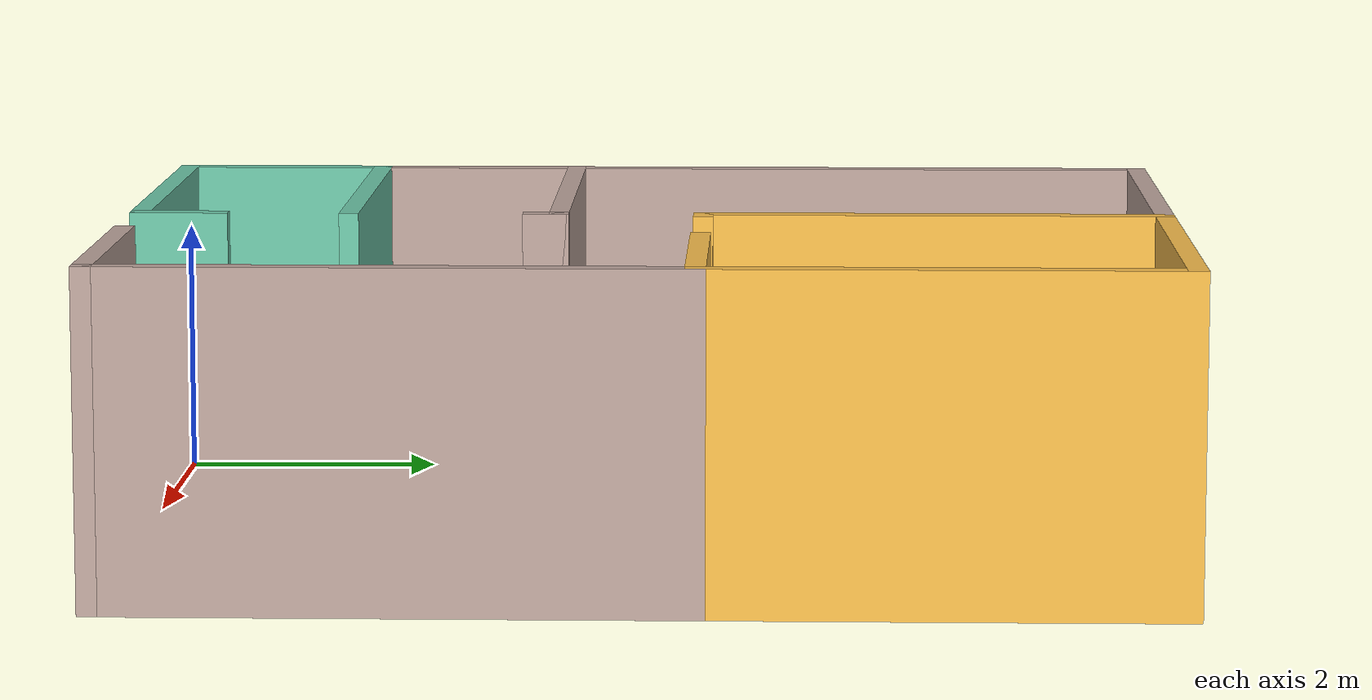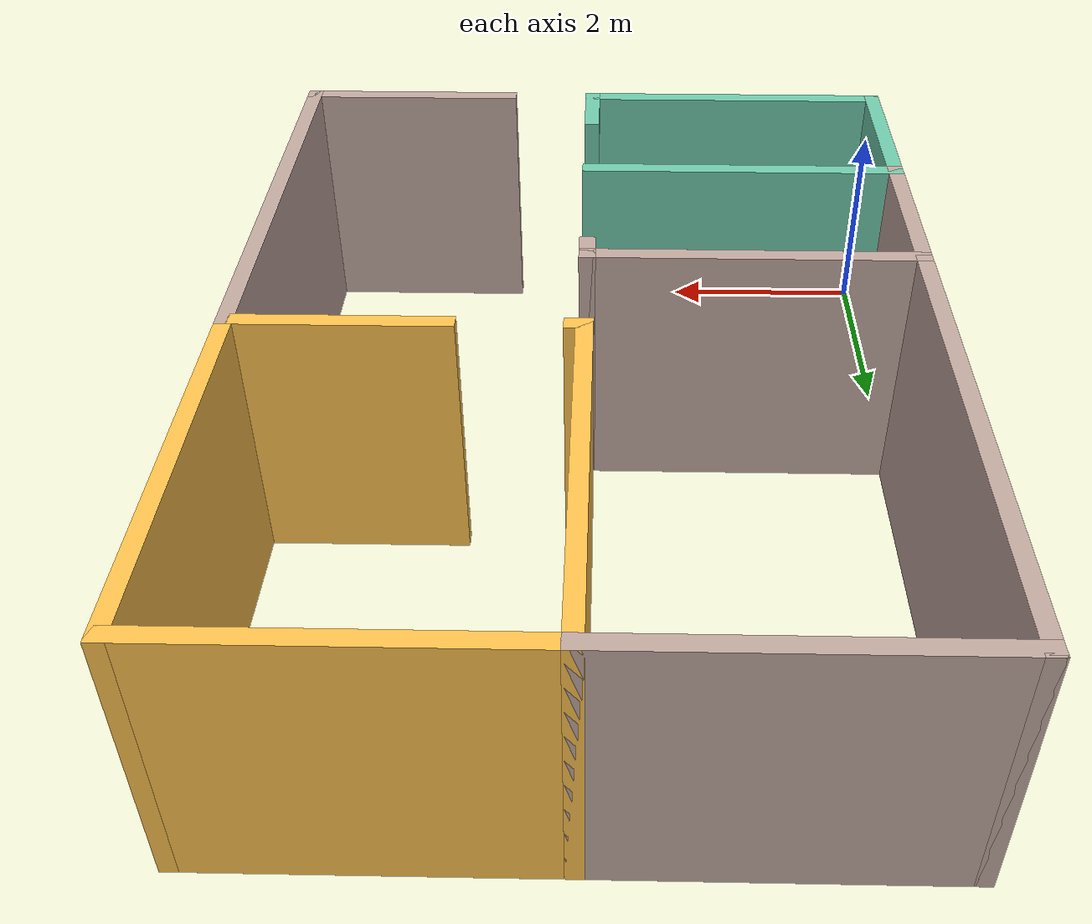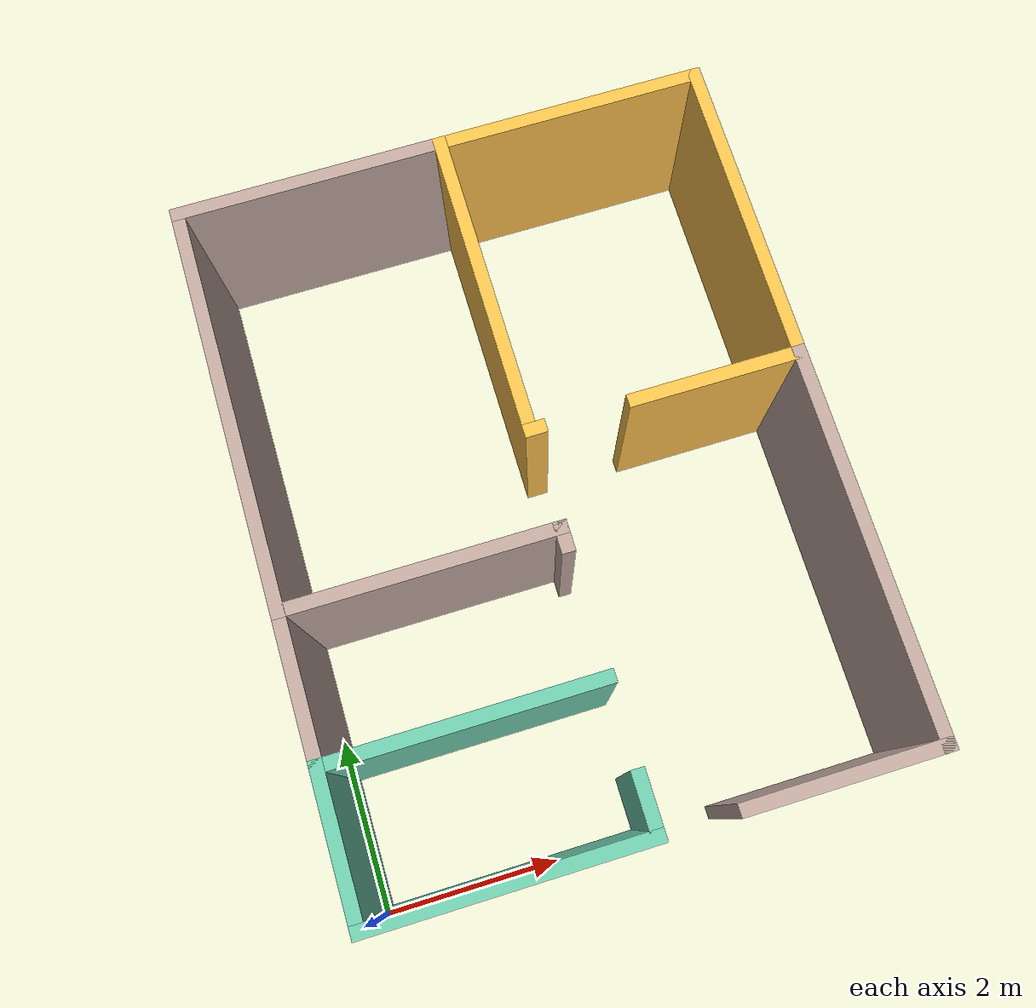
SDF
<?xml version='1.0'?>
<sdf version='1.6'>
  <model name='Building'>
    <pose frame=''>3 3.9 0 0 -0 0</pose>
    <link name='Wall_0'>
      <collision name='Wall_0_Collision'>
        <geometry>
          <box>
            <size>3.15 0.15 2.5</size>
          </box>
        </geometry>
        <pose frame=''>0 0 1.25 0 -0 0</pose>
      </collision>
      <visual name='Wall_0_Visual'>
        <pose frame=''>0 0 1.25 0 -0 0</pose>
        <geometry>
          <box>
            <size>3.15 0.15 2.5</size>
          </box>
        </geometry>
        <material>
          <script>
            <uri>file://media/materials/scripts/gazebo.material</uri>
            <name>Gazebo/Grey</name>
          </script>
          <ambient>0.435294 0.796078 0.67451 1</ambient>
        </material>
        <meta>
          <layer>0</layer>
        </meta>
      </visual>
      <pose frame=''>-1.5 -3.9 0 0 -0 0</pose>
    </link>
    <link name='Wall_11'>
      <collision name='Wall_11_Collision'>
        <geometry>
          <box>
            <size>4.75 0.15 2.5</size>
          </box>
        </geometry>
        <pose frame=''>0 0 1.25 0 -0 0</pose>
      </collision>
      <visual name='Wall_11_Visual'>
        <pose frame=''>0 0 1.25 0 -0 0</pose>
        <geometry>
          <box>
            <size>4.75 0.15 2.5</size>
          </box>
        </geometry>
        <material>
          <script>
            <uri>file://media/materials/scripts/gazebo.material</uri>
            <name>Gazebo/Grey</name>
          </script>
          <ambient>0.760784 0.662745 0.627451 1</ambient>
        </material>
        <meta>
          <layer>0</layer>
        </meta>
      </visual>
      <pose frame=''>-3 1.6 0 0 -0 1.5708</pose>
    </link>
    <link name='Wall_13'>
      <collision name='Wall_13_Collision'>
        <geometry>
          <box>
            <size>3.15 0.15 2.5</size>
          </box>
        </geometry>
        <pose frame=''>0 0 1.25 0 -0 0</pose>
      </collision>
      <visual name='Wall_13_Visual'>
        <pose frame=''>0 0 1.25 0 -0 0</pose>
        <geometry>
          <box>
            <size>3.15 0.15 2.5</size>
          </box>
        </geometry>
        <material>
          <script>
            <uri>file://media/materials/scripts/gazebo.material</uri>
            <name>Gazebo/Grey</name>
          </script>
          <ambient>0.760784 0.662745 0.627451 1</ambient>
        </material>
        <meta>
          <layer>0</layer>
        </meta>
      </visual>
      <pose frame=''>-1.5 3.9 0 0 -0 0</pose>
    </link>
    <link name='Wall_15'>
      <collision name='Wall_15_Collision'>
        <geometry>
          <box>
            <size>3.65 0.15 2.5</size>
          </box>
        </geometry>
        <pose frame=''>0 0 1.25 0 -0 0</pose>
      </collision>
      <visual name='Wall_15_Visual'>
        <pose frame=''>0 0 1.25 0 -0 0</pose>
        <geometry>
          <box>
            <size>3.65 0.15 2.5</size>
          </box>
        </geometry>
        <material>
          <script>
            <uri>file://media/materials/scripts/gazebo.material</uri>
            <name>Gazebo/Grey</name>
          </script>
          <ambient>1 0.764706 0.305882 1</ambient>
        </material>
        <meta>
          <layer>0</layer>
        </meta>
      </visual>
      <pose frame=''>0 2.15 0 0 -0 -1.5708</pose>
    </link>
    <link name='Wall_17'>
      <collision name='Wall_17_Collision'>
        <geometry>
          <box>
            <size>3.15 0.15 2.5</size>
          </box>
        </geometry>
        <pose frame=''>0 0 1.25 0 -0 0</pose>
      </collision>
      <visual name='Wall_17_Visual'>
        <pose frame=''>0 0 1.25 0 -0 0</pose>
        <geometry>
          <box>
            <size>3.15 0.15 2.5</size>
          </box>
        </geometry>
        <material>
          <script>
            <uri>file://media/materials/scripts/gazebo.material</uri>
            <name>Gazebo/Grey</name>
          </script>
          <ambient>1 0.764706 0.305882 1</ambient>
        </material>
        <meta>
          <layer>0</layer>
        </meta>
      </visual>
      <pose frame=''>1.5 3.9 0 0 -0 0</pose>
    </link>
    <link name='Wall_19'>
      <collision name='Wall_19_Collision'>
        <geometry>
          <box>
            <size>3.65 0.15 2.5</size>
          </box>
        </geometry>
        <pose frame=''>0 0 1.25 0 -0 0</pose>
      </collision>
      <visual name='Wall_19_Visual'>
        <pose frame=''>0 0 1.25 0 -0 0</pose>
        <geometry>
          <box>
            <size>3.65 0.15 2.5</size>
          </box>
        </geometry>
        <material>
          <script>
            <uri>file://media/materials/scripts/gazebo.material</uri>
            <name>Gazebo/Grey</name>
          </script>
          <ambient>1 0.764706 0.305882 1</ambient>
        </material>
        <meta>
          <layer>0</layer>
        </meta>
      </visual>
      <pose frame=''>3 2.15 0 0 -0 -1.5708</pose>
    </link>
    <link name='Wall_2'>
      <collision name='Wall_2_Collision'>
        <geometry>
          <box>
            <size>1.75 0.15 2.5</size>
          </box>
        </geometry>
        <pose frame=''>0 0 1.25 0 -0 0</pose>
      </collision>
      <visual name='Wall_2_Visual'>
        <pose frame=''>0 0 1.25 0 -0 0</pose>
        <geometry>
          <box>
            <size>1.75 0.15 2.5</size>
          </box>
        </geometry>
        <material>
          <script>
            <uri>file://media/materials/scripts/gazebo.material</uri>
            <name>Gazebo/Grey</name>
          </script>
          <ambient>0.435294 0.796078 0.67451 1</ambient>
        </material>
        <meta>
          <layer>0</layer>
        </meta>
      </visual>
      <pose frame=''>-3 -3.1 0 0 -0 1.5708</pose>
    </link>
    <link name='Wall_23'>
      <collision name='Wall_23_Collision'>
        <geometry>
          <box>
            <size>2 0.15 2.5</size>
          </box>
        </geometry>
        <pose frame=''>0 0 1.25 0 -0 0</pose>
      </collision>
      <visual name='Wall_23_Visual'>
        <pose frame=''>0 0 1.25 0 -0 0</pose>
        <geometry>
          <box>
            <size>2 0.15 2.5</size>
          </box>
        </geometry>
        <material>
          <script>
            <uri>file://media/materials/scripts/gazebo.material</uri>
            <name>Gazebo/Grey</name>
          </script>
          <ambient>1 0.764706 0.305882 1</ambient>
        </material>
        <meta>
          <layer>0</layer>
        </meta>
      </visual>
      <pose frame=''>2.075 0.4 0 0 -0 3.14159</pose>
    </link>
    <link name='Wall_25'>
      <collision name='Wall_25_Collision'>
        <geometry>
          <box>
            <size>4.45 0.15 2.5</size>
          </box>
        </geometry>
        <pose frame=''>0 0 1.25 0 -0 0</pose>
      </collision>
      <visual name='Wall_25_Visual'>
        <pose frame=''>0 0 1.25 0 -0 0</pose>
        <geometry>
          <box>
            <size>4.45 0.15 2.5</size>
          </box>
        </geometry>
        <material>
          <script>
            <uri>file://media/materials/scripts/gazebo.material</uri>
            <name>Gazebo/Grey</name>
          </script>
          <ambient>0.760784 0.662745 0.627451 1</ambient>
        </material>
        <meta>
          <layer>0</layer>
        </meta>
      </visual>
      <pose frame=''>3 -1.75 0 0 -0 -1.5708</pose>
    </link>
    <link name='Wall_28'>
      <collision name='Wall_28_Collision'>
        <geometry>
          <box>
            <size>0.75 0.15 2.5</size>
          </box>
        </geometry>
        <pose frame=''>0 0 1.25 0 -0 0</pose>
      </collision>
      <visual name='Wall_28_Visual'>
        <pose frame=''>0 0 1.25 0 -0 0</pose>
        <geometry>
          <box>
            <size>0.75 0.15 2.5</size>
          </box>
        </geometry>
        <material>
          <script>
            <uri>file://media/materials/scripts/gazebo.material</uri>
            <name>Gazebo/Grey</name>
          </script>
          <ambient>0.435294 0.796078 0.67451 1</ambient>
        </material>
        <meta>
          <layer>0</layer>
        </meta>
      </visual>
      <pose frame=''>0 -3.6 0 0 -0 1.5708</pose>
    </link>
    <link name='Wall_30'>
      <collision name='Wall_30_Collision'>
        <geometry>
          <box>
            <size>2.25 0.15 2.5</size>
          </box>
        </geometry>
        <pose frame=''>0 0 1.25 0 -0 0</pose>
      </collision>
      <visual name='Wall_30_Visual'>
        <pose frame=''>0 0 1.25 0 -0 0</pose>
        <geometry>
          <box>
            <size>2.25 0.15 2.5</size>
          </box>
        </geometry>
        <material>
          <script>
            <uri>file://media/materials/scripts/gazebo.material</uri>
            <name>Gazebo/Grey</name>
          </script>
          <ambient>0.760784 0.662745 0.627451 1</ambient>
        </material>
        <meta>
          <layer>0</layer>
        </meta>
      </visual>
      <pose frame=''>1.95 -3.9 0 0 -0 3.14159</pose>
    </link>
    <link name='Wall_32'>
      <collision name='Wall_32_Collision'>
        <geometry>
          <box>
            <size>0.25 0.15 2.5</size>
          </box>
        </geometry>
        <pose frame=''>0 0 1.25 0 -0 0</pose>
      </collision>
      <visual name='Wall_32_Visual'>
        <pose frame=''>0 0 1.25 0 -0 0</pose>
        <geometry>
          <box>
            <size>0.25 0.15 2.5</size>
          </box>
        </geometry>
        <material>
          <script>
            <uri>file://media/materials/scripts/gazebo.material</uri>
            <name>Gazebo/Grey</name>
          </script>
          <ambient>1 0.764706 0.305882 1</ambient>
        </material>
        <meta>
          <layer>0</layer>
        </meta>
      </visual>
      <pose frame=''>0.05 0.4 0 0 -0 0</pose>
    </link>
    <link name='Wall_34'>
      <collision name='Wall_34_Collision'>
        <geometry>
          <box>
            <size>0.15 0.15 2.5</size>
          </box>
        </geometry>
        <pose frame=''>0 0 1.25 0 -0 0</pose>
      </collision>
      <visual name='Wall_34_Visual'>
        <pose frame=''>0 0 1.25 0 -0 0</pose>
        <geometry>
          <box>
            <size>0.15 0.15 2.5</size>
          </box>
        </geometry>
        <material>
          <script>
            <uri>file://media/materials/scripts/gazebo.material</uri>
            <name>Gazebo/Grey</name>
          </script>
          <ambient>0.760784 0.662745 0.627451 1</ambient>
        </material>
        <meta>
          <layer>0</layer>
        </meta>
      </visual>
      <pose frame=''>0 -0.7 0 0 -0 0</pose>
    </link>
    <link name='Wall_37'>
      <collision name='Wall_37_Collision'>
        <geometry>
          <box>
            <size>0.35 0.15 2.5</size>
          </box>
        </geometry>
        <pose frame=''>0 0 1.25 0 -0 0</pose>
      </collision>
      <visual name='Wall_37_Visual'>
        <pose frame=''>0 0 1.25 0 -0 0</pose>
        <geometry>
          <box>
            <size>0.35 0.15 2.5</size>
          </box>
        </geometry>
        <material>
          <script>
            <uri>file://media/materials/scripts/gazebo.material</uri>
            <name>Gazebo/Grey</name>
          </script>
          <ambient>0.760784 0.662745 0.627451 1</ambient>
        </material>
        <meta>
          <layer>0</layer>
        </meta>
      </visual>
      <pose frame=''>0 -0.8 0 0 -0 1.5708</pose>
    </link>
    <link name='Wall_4'>
      <collision name='Wall_4_Collision'>
        <geometry>
          <box>
            <size>3.15 0.15 2.5</size>
          </box>
        </geometry>
        <pose frame=''>0 0 1.25 0 -0 0</pose>
      </collision>
      <visual name='Wall_4_Visual'>
        <pose frame=''>0 0 1.25 0 -0 0</pose>
        <geometry>
          <box>
            <size>3.15 0.15 2.5</size>
          </box>
        </geometry>
        <material>
          <script>
            <uri>file://media/materials/scripts/gazebo.material</uri>
            <name>Gazebo/Grey</name>
          </script>
          <ambient>0.435294 0.796078 0.67451 1</ambient>
        </material>
        <meta>
          <layer>0</layer>
        </meta>
      </visual>
      <pose frame=''>-1.5 -2.3 0 0 -0 0</pose>
    </link>
    <link name='Wall_6'>
      <collision name='Wall_6_Collision'>
        <geometry>
          <box>
            <size>1.75 0.15 2.5</size>
          </box>
        </geometry>
        <pose frame=''>0 0 1.25 0 -0 0</pose>
      </collision>
      <visual name='Wall_6_Visual'>
        <pose frame=''>0 0 1.25 0 -0 0</pose>
        <geometry>
          <box>
            <size>1.75 0.15 2.5</size>
          </box>
        </geometry>
        <material>
          <script>
            <uri>file://media/materials/scripts/gazebo.material</uri>
            <name>Gazebo/Grey</name>
          </script>
          <ambient>0.760784 0.662745 0.627451 1</ambient>
        </material>
        <meta>
          <layer>0</layer>
        </meta>
      </visual>
      <pose frame=''>-3 -1.5 0 0 -0 1.5708</pose>
    </link>
    <link name='Wall_8'>
      <collision name='Wall_8_Collision'>
        <geometry>
          <box>
            <size>3.15 0.15 2.5</size>
          </box>
        </geometry>
        <pose frame=''>0 0 1.25 0 -0 0</pose>
      </collision>
      <visual name='Wall_8_Visual'>
        <pose frame=''>0 0 1.25 0 -0 0</pose>
        <geometry>
          <box>
            <size>3.15 0.15 2.5</size>
          </box>
        </geometry>
        <material>
          <script>
            <uri>file://media/materials/scripts/gazebo.material</uri>
            <name>Gazebo/Grey</name>
          </script>
          <ambient>0.760784 0.662745 0.627451 1</ambient>
        </material>
        <meta>
          <layer>0</layer>
        </meta>
      </visual>
      <pose frame=''>-1.5 -0.7 0 0 -0 0</pose>
    </link>
    <static>1</static>
  </model>
</sdf>
